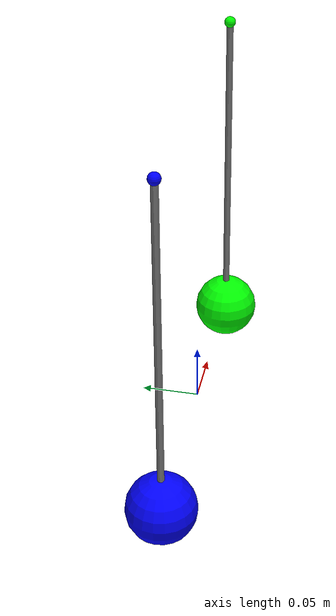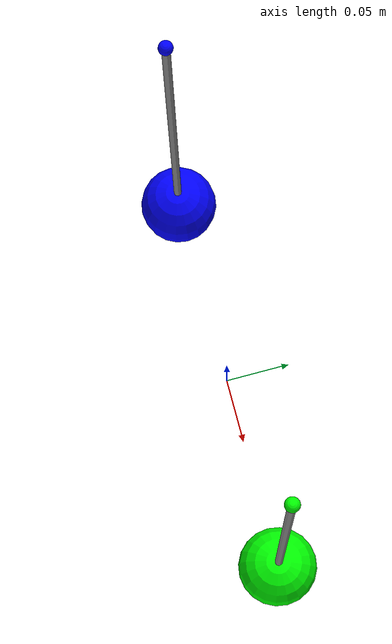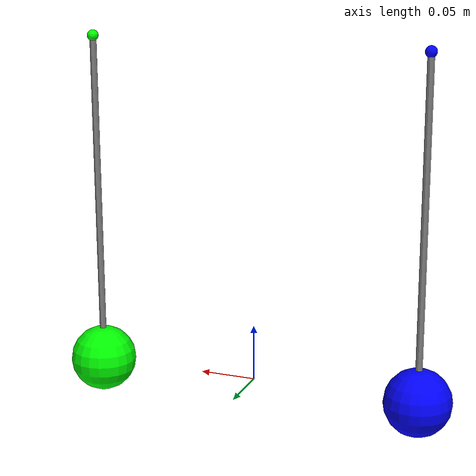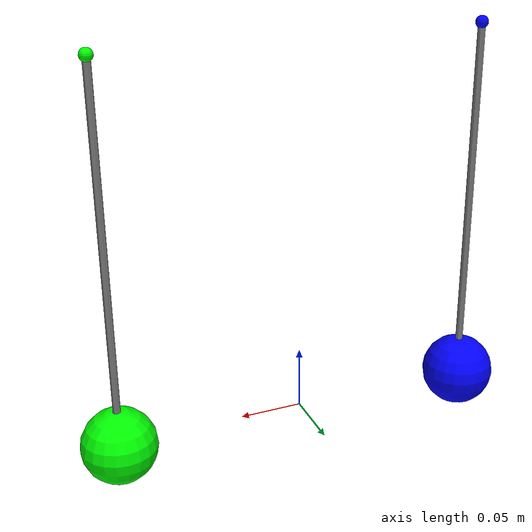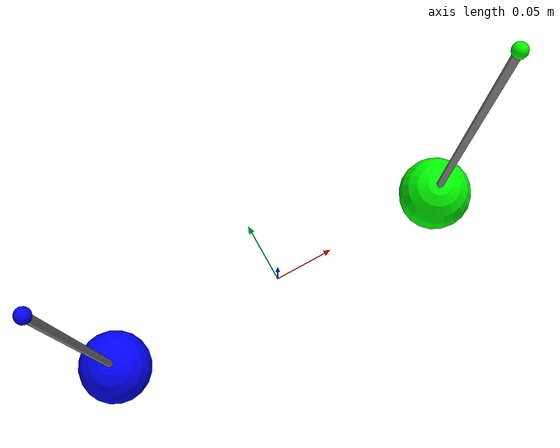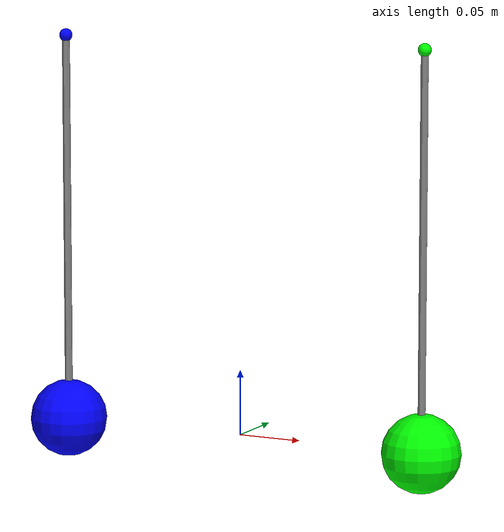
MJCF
<mujoco model="compliant_muscle_test">
  <option integrator="Euler" timestep="0.0001" gravity="0 0 -9.81"/>

  <default>
    <default class="muscle">
      <general biasprm="0.75 1.05 -1 400 0.5 1.6 1.5 1.3 1.2 0" biastype="muscle" ctrllimited="true" ctrlrange="0 1" dynprm="0.01 0.04 0 0 0 0 0 0 0 0" dyntype="muscle" gainprm="0.75 1.05 -1 400 0.5 1.6 1.5 1.3 1.2 0" gaintype="muscle"/>
    </default>
  </default>

  <worldbody>
    <body name="ground"/>

    <!-- Compliant tendon pendulum (left) -->

    <!-- Rigid tendon (non-compliant) pendulum (right) -->

    <!-- Fixed anchor sites for tendons -->
    <site name="fixed_c" pos="-0.15 0 0.3" size="0.005" rgba="0 0 1 1"/>
    <site name="fixed_r" pos="0.15 0 0.3" size="0.005" rgba="0 1 0 1"/>

    <!-- Point masses to be pulled by muscles -->
    <body name="mass_c" pos="-0.15 0 0">
      <joint name="slide_c" type="slide" axis="0 0 1" limited="true" range="-1.0 1.0" damping="4" frictionloss="0.5"/>
      <site name="mass_c_site" pos="0 0 0" size="0.005" rgba="0 0 1 1"/>
      <geom type="sphere" size="0.03" mass="0.1" rgba="0 0 1 1"/>
    </body>
    <body name="mass_r" pos="0.15 0 0">
      <joint name="slide_r" type="slide" axis="0 0 1" limited="true" range="-1 1.0" damping="40" frictionloss="0.2"/>
      <site name="mass_r_site" pos="0 0 0" size="0.005" rgba="0 1 0 1"/>
      <geom type="sphere" size="0.03" mass="1" rgba="0 1 0 1"/>
    </body>
  </worldbody>

  <!-- Tendon paths for muscles: fixed anchor to point mass site -->
  <tendon>
    <spatial name="tendon_c">
      <site site="fixed_c"/>
      <site site="mass_c_site"/>
    </spatial>
    <spatial name="tendon_r">
      <site site="fixed_r"/>
      <site site="mass_r_site"/>
    </spatial>
  </tendon>

  <actuator>
    <!-- Compliant tendon muscle pulling left point mass -->
    <muscle class="muscle" name="muscle_c" tendon="tendon_c" compliant="true" lengthrange="0.25 0.35"
            fmax="1500" lopt="0.11" vmax="10.0" lslack="0.05"
            W="0.56" C="-2.995732" N="1.5" K="5.0"
            E_REF_PE="0.56" E_REF_BE="0.28" E_REF_BE2="0.44" E_REF="0.04"
            tau_act="0.01" tau_dact="0.03" smin="0.01" smax="1.0"
            nsubstep="1" A_init="0.0"/>

    <!-- Non-compliant (rigid tendon approximation) muscle pulling right point mass -->
    <muscle class="muscle" name="muscle_r" tendon="tendon_r" compliant="false" lengthrange="0.05 0.5"/>
  </actuator>

  <sensor>
    <tendonpos name="len_c" tendon="tendon_c"/>
    <tendonpos name="len_r" tendon="tendon_r"/>
    <actuatorfrc name="frc_c" actuator="muscle_c"/>
    <actuatorfrc name="frc_r" actuator="muscle_r"/>
  </sensor>
</mujoco>
